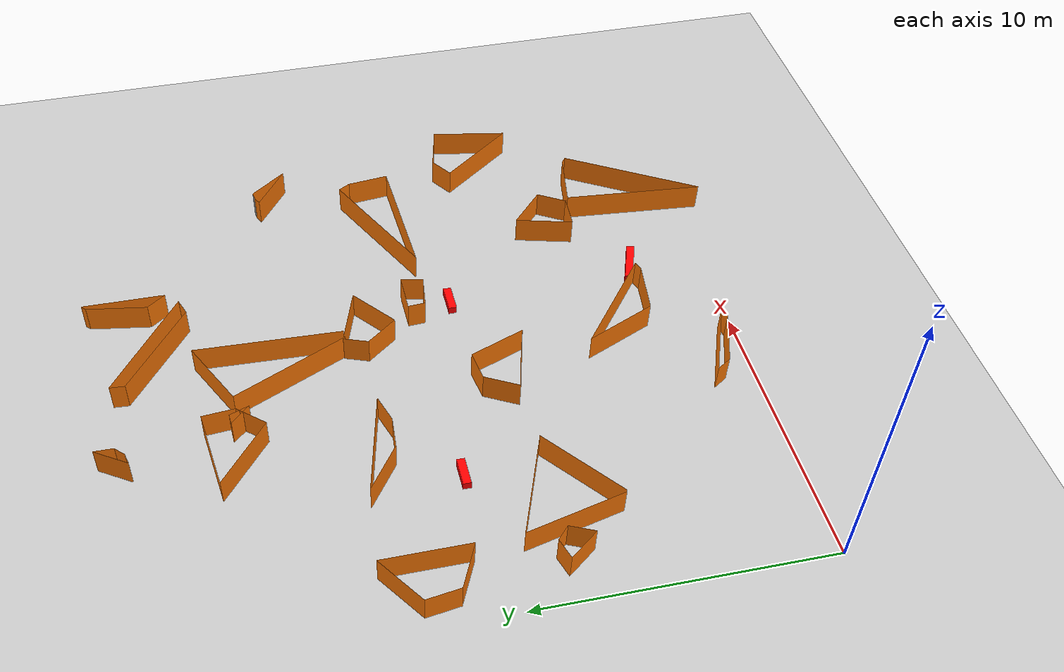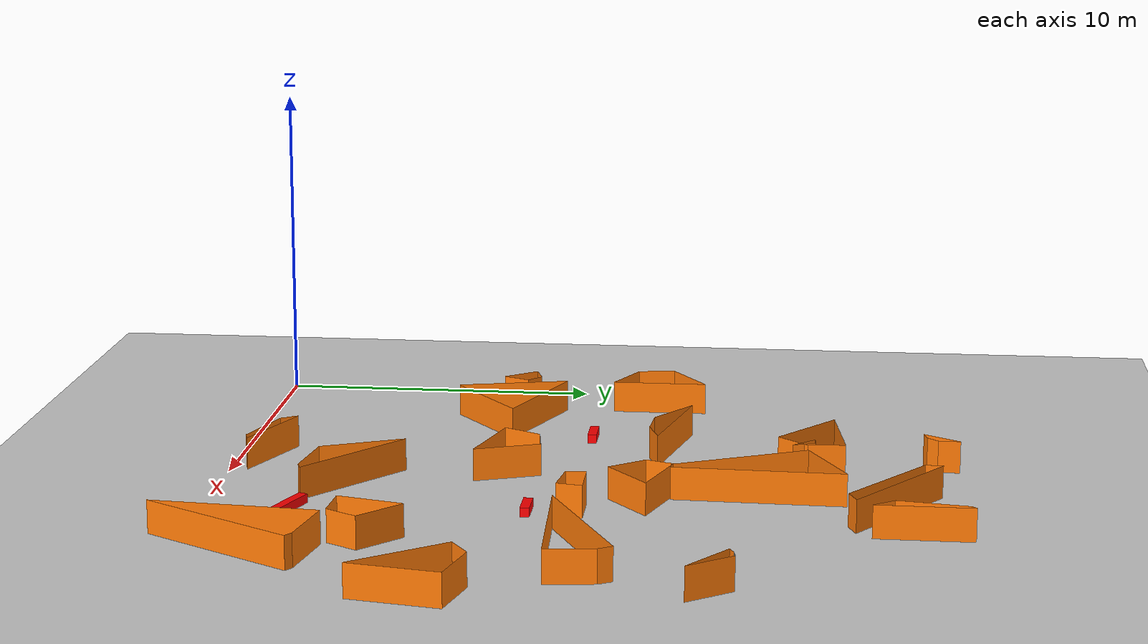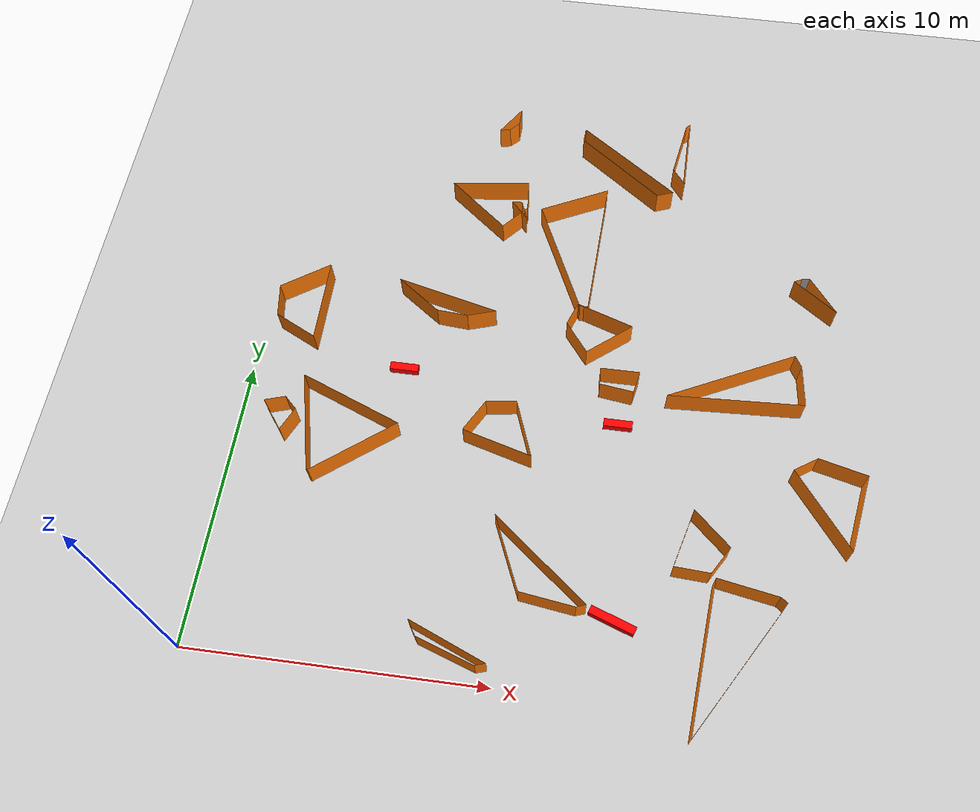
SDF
<sdf version="1.7">
 <world name="default">
  <light name="sun" type="directional">
   <pose>0 0 10 0 -0 0</pose>
   <diffuse>0.8 0.8 0.8 1</diffuse>
   <specular>0.2 0.2 0.2 1</specular>
   <attenuation>
    <range>1000</range>
    <constant>0.9</constant>
    <linear>0.01</linear>
    <quadratic>0.001</quadratic>
   </attenuation>
   <direction>-0.5 0.1 -0.9</direction>
   <spot><inner_angle>0</inner_angle><outer_angle>0</outer_angle><falloff>0</falloff></spot>
  </light>
  <model name="ground_plane">
   <static>1</static>
   <link name="link">
    <collision name="collision">
     <geometry><plane><normal>0 0 1</normal><size>100 100</size></plane></geometry>
     <surface>
      <contact><collide_bitmask>65535</collide_bitmask></contact>
      <friction><ode><mu>100</mu><mu2>50</mu2></ode></friction>
     </surface>
    </collision>
    <visual name="visual">
     <cast_shadows>0</cast_shadows>
     <geometry><plane><normal>0 0 1</normal><size>100 100</size></plane></geometry>
     <material>
      <script><uri>file://media/materials/scripts/gazebo.material</uri><name>Gazebo/Grey</name></script>
     </material>
    </visual>
   </link>
  </model>
  <gravity>0 0 -9.8</gravity>
  <magnetic_field>6e-06 2.3e-05 -4.2e-05</magnetic_field>
  <atmosphere type="adiabatic"/>
  <physics type="ode">
   <max_step_size>0.001</max_step_size>
   <real_time_factor>1</real_time_factor>
   <real_time_update_rate>1000</real_time_update_rate>
  </physics>
  <scene><ambient>0.4 0.4 0.4 1</ambient><background>0.7 0.7 0.7 1</background><shadows>1</shadows></scene>
  <spherical_coordinates>
   <surface_model>EARTH_WGS84</surface_model>
   <latitude_deg>0</latitude_deg>
   <longitude_deg>0</longitude_deg>
   <elevation>0</elevation>
   <heading_deg>0</heading_deg>
  </spherical_coordinates>
  <model name="ecmr1">
   <pose>10.688 10.727 0 0 -0 0</pose>
   <link name="Wall_0">
    <collision name="Wall_0_Collision">
     <geometry><box><size>2.74956 0 1</size></box></geometry>
     <pose>0 0 0.5 0 -0 0</pose>
    </collision>
    <visual name="Wall_0_Visual">
     <pose>0 0 0.5 0 -0 0</pose>
     <geometry><box><size>2.74956 0 1</size></box></geometry>
     <material>
      <script><uri>file://media/materials/scripts/gazebo.material</uri><name>Gazebo/Grey</name></script>
      <ambient>0.996078 0.47451 0.0196078 1</ambient>
     </material>
     <meta><layer>0</layer></meta>
    </visual>
    <pose>10.4415 -3.7665 0 0 -0 1.39052</pose>
   </link>
   <link name="Wall_1">
    <collision name="Wall_1_Collision">
     <geometry><box><size>1.72759 0 1</size></box></geometry>
     <pose>0 0 0.5 0 -0 0</pose>
    </collision>
    <visual name="Wall_1_Visual">
     <pose>0 0 0.5 0 -0 0</pose>
     <geometry><box><size>1.72759 0 1</size></box></geometry>
     <material>
      <script><uri>file://media/materials/scripts/gazebo.material</uri><name>Gazebo/Grey</name></script>
      <ambient>0.996078 0.47451 0.0196078 1</ambient>
     </material>
     <meta><layer>0</layer></meta>
    </visual>
    <pose>9.8495 -2.2065 0 0 -0 2.899</pose>
   </link>
   <link name="Wall_10">
    <collision name="Wall_10_Collision">
     <geometry><box><size>0.275536 0 1</size></box></geometry>
     <pose>0 0 0.5 0 -0 0</pose>
    </collision>
    <visual name="Wall_10_Visual">
     <pose>0 0 0.5 0 -0 0</pose>
     <geometry><box><size>0.275536 0 1</size></box></geometry>
     <material>
      <script><uri>file://media/materials/scripts/gazebo.material</uri><name>Gazebo/Grey</name></script>
      <ambient>1 1 1 1</ambient>
     </material>
     <meta><layer>0</layer></meta>
    </visual>
    <pose>8.439 5.044 0 0 -0 -2.98122</pose>
   </link>
   <link name="Wall_11">
    <collision name="Wall_11_Collision">
     <geometry><box><size>0.304113 0 1</size></box></geometry>
     <pose>0 0 0.5 0 -0 0</pose>
    </collision>
    <visual name="Wall_11_Visual">
     <pose>0 0 0.5 0 -0 0</pose>
     <geometry><box><size>0.304113 0 1</size></box></geometry>
     <material>
      <script><uri>file://media/materials/scripts/gazebo.material</uri><name>Gazebo/Grey</name></script>
      <ambient>0.996078 0.47451 0.0196078 1</ambient>
     </material>
     <meta><layer>0</layer></meta>
    </visual>
    <pose>8.1665 4.955 0 0 -0 -2.6853</pose>
   </link>
   <link name="Wall_12">
    <collision name="Wall_12_Collision">
     <geometry><box><size>1.87399 0 1</size></box></geometry>
     <pose>0 0 0.5 0 -0 0</pose>
    </collision>
    <visual name="Wall_12_Visual">
     <pose>0 0 0.5 0 -0 0</pose>
     <geometry><box><size>1.87399 0 1</size></box></geometry>
     <material>
      <script><uri>file://media/materials/scripts/gazebo.material</uri><name>Gazebo/Grey</name></script>
      <ambient>0.996078 0.47451 0.0196078 1</ambient>
     </material>
     <meta><layer>0</layer></meta>
    </visual>
    <pose>8.7875 4.3365 0 0 -0 -0.629306</pose>
   </link>
   <link name="Wall_13">
    <collision name="Wall_13_Collision">
     <geometry><box><size>1.60682 0 1</size></box></geometry>
     <pose>0 0 0.5 0 -0 0</pose>
    </collision>
    <visual name="Wall_13_Visual">
     <pose>0 0 0.5 0 -0 0</pose>
     <geometry><box><size>1.60682 0 1</size></box></geometry>
     <material>
      <script><uri>file://media/materials/scripts/gazebo.material</uri><name>Gazebo/Grey</name></script>
      <ambient>0.996078 0.47451 0.0196078 1</ambient>
     </material>
     <meta><layer>0</layer></meta>
    </visual>
    <pose>9.06 4.4255 0 0 -0 2.2189</pose>
   </link>
   <link name="Wall_15">
    <collision name="Wall_15_Collision">
     <geometry><box><size>1.18554 0 1</size></box></geometry>
     <pose>0 0 0.5 0 -0 0</pose>
    </collision>
    <visual name="Wall_15_Visual">
     <pose>0 0 0.5 0 -0 0</pose>
     <geometry><box><size>1.18554 0 1</size></box></geometry>
     <material>
      <script><uri>file://media/materials/scripts/gazebo.material</uri><name>Gazebo/Grey</name></script>
      <ambient>0.996078 0.47451 0.0196078 1</ambient>
     </material>
     <meta><layer>0</layer></meta>
    </visual>
    <pose>-10.175 1.6885 0 0 -0 -1.4252</pose>
   </link>
   <link name="Wall_16">
    <collision name="Wall_16_Collision">
     <geometry><box><size>1.6239 0 1</size></box></geometry>
     <pose>0 0 0.5 0 -0 0</pose>
    </collision>
    <visual name="Wall_16_Visual">
     <pose>0 0 0.5 0 -0 0</pose>
     <geometry><box><size>1.6239 0 1</size></box></geometry>
     <material>
      <script><uri>file://media/materials/scripts/gazebo.material</uri><name>Gazebo/Grey</name></script>
      <ambient>0.996078 0.47451 0.0196078 1</ambient>
     </material>
     <meta><layer>0</layer></meta>
    </visual>
    <pose>-9.3595 0.7455 0 0 -0 -0.454559</pose>
   </link>
   <link name="Wall_17">
    <collision name="Wall_17_Collision">
     <geometry><box><size>3.00202 0 1</size></box></geometry>
     <pose>0 0 0.5 0 -0 0</pose>
    </collision>
    <visual name="Wall_17_Visual">
     <pose>0 0 0.5 0 -0 0</pose>
     <geometry><box><size>3.00202 0 1</size></box></geometry>
     <material>
      <script><uri>file://media/materials/scripts/gazebo.material</uri><name>Gazebo/Grey</name></script>
      <ambient>0.996078 0.47451 0.0196078 1</ambient>
     </material>
     <meta><layer>0</layer></meta>
    </visual>
    <pose>-8.635 1.89 0 0 -0 1.57413</pose>
   </link>
   <link name="Wall_18">
    <collision name="Wall_18_Collision">
     <geometry><box><size>1.96802 0 1</size></box></geometry>
     <pose>0 0 0.5 0 -0 0</pose>
    </collision>
    <visual name="Wall_18_Visual">
     <pose>0 0 0.5 0 -0 0</pose>
     <geometry><box><size>1.96802 0 1</size></box></geometry>
     <material>
      <script><uri>file://media/materials/scripts/gazebo.material</uri><name>Gazebo/Grey</name></script>
      <ambient>0.996078 0.47451 0.0196078 1</ambient>
     </material>
     <meta><layer>0</layer></meta>
    </visual>
    <pose>-9.4505 2.833 0 0 -0 -2.53865</pose>
   </link>
   <link name="Wall_2">
    <collision name="Wall_2_Collision">
     <geometry><box><size>0.938836 0 1</size></box></geometry>
     <pose>0 0 0.5 0 -0 0</pose>
    </collision>
    <visual name="Wall_2_Visual">
     <pose>0 0 0.5 0 -0 0</pose>
     <geometry><box><size>0.938836 0 1</size></box></geometry>
     <material>
      <script><uri>file://media/materials/scripts/gazebo.material</uri><name>Gazebo/Grey</name></script>
      <ambient>0.996078 0.47451 0.0196078 1</ambient>
     </material>
     <meta><layer>0</layer></meta>
    </visual>
    <pose>8.6195 -2.258 0 0 -0 -2.55714</pose>
   </link>
   <link name="Wall_20">
    <collision name="Wall_20_Collision">
     <geometry><box><size>1.36502 0 1</size></box></geometry>
     <pose>0 0 0.5 0 -0 0</pose>
    </collision>
    <visual name="Wall_20_Visual">
     <pose>0 0 0.5 0 -0 0</pose>
     <geometry><box><size>1.36502 0 1</size></box></geometry>
     <material>
      <script><uri>file://media/materials/scripts/gazebo.material</uri><name>Gazebo/Grey</name></script>
      <ambient>0.996078 0.47451 0.0196078 1</ambient>
     </material>
     <meta><layer>0</layer></meta>
    </visual>
    <pose>2.1705 0.451001 0 0 -0 -3.13573</pose>
   </link>
   <link name="Wall_21">
    <collision name="Wall_21_Collision">
     <geometry><box><size>0.620291 0 1</size></box></geometry>
     <pose>0 0 0.5 0 -0 0</pose>
    </collision>
    <visual name="Wall_21_Visual">
     <pose>0 0 0.5 0 -0 0</pose>
     <geometry><box><size>0.620291 0 1</size></box></geometry>
     <material>
      <script><uri>file://media/materials/scripts/gazebo.material</uri><name>Gazebo/Grey</name></script>
      <ambient>0.996078 0.47451 0.0196078 1</ambient>
     </material>
     <meta><layer>0</layer></meta>
    </visual>
    <pose>1.508 0.137501 0 0 -0 -1.50627</pose>
   </link>
   <link name="Wall_22">
    <collision name="Wall_22_Collision">
     <geometry><box><size>1.18432 0 1</size></box></geometry>
     <pose>0 0 0.5 0 -0 0</pose>
    </collision>
    <visual name="Wall_22_Visual">
     <pose>0 0 0.5 0 -0 0</pose>
     <geometry><box><size>1.18432 0 1</size></box></geometry>
     <material>
      <script><uri>file://media/materials/scripts/gazebo.material</uri><name>Gazebo/Grey</name></script>
      <ambient>0.996078 0.47451 0.0196078 1</ambient>
     </material>
     <meta><layer>0</layer></meta>
    </visual>
    <pose>2.115 -0.249999 0 0 -0 -0.132105</pose>
   </link>
   <link name="Wall_23">
    <collision name="Wall_23_Collision">
     <geometry><box><size>0.797427 0 1</size></box></geometry>
     <pose>0 0 0.5 0 -0 0</pose>
    </collision>
    <visual name="Wall_23_Visual">
     <pose>0 0 0.5 0 -0 0</pose>
     <geometry><box><size>0.797427 0 1</size></box></geometry>
     <material>
      <script><uri>file://media/materials/scripts/gazebo.material</uri><name>Gazebo/Grey</name></script>
      <ambient>0.996078 0.47451 0.0196078 1</ambient>
     </material>
     <meta><layer>0</layer></meta>
    </visual>
    <pose>2.7775 0.0635 0 0 -0 1.38029</pose>
   </link>
   <link name="Wall_25">
    <collision name="Wall_25_Collision">
     <geometry><box><size>1.05769 0 1</size></box></geometry>
     <pose>0 0 0.5 0 -0 0</pose>
    </collision>
    <visual name="Wall_25_Visual">
     <pose>0 0 0.5 0 -0 0</pose>
     <geometry><box><size>1.05769 0 1</size></box></geometry>
     <material>
      <script><uri>file://media/materials/scripts/gazebo.material</uri><name>Gazebo/Grey</name></script>
      <ambient>0.996078 0.47451 0.0196078 1</ambient>
     </material>
     <meta><layer>0</layer></meta>
    </visual>
    <pose>-1.7265 -1.28 0 0 -0 -2.99929</pose>
   </link>
   <link name="Wall_26">
    <collision name="Wall_26_Collision">
     <geometry><box><size>1.29809 0 1</size></box></geometry>
     <pose>0 0 0.5 0 -0 0</pose>
    </collision>
    <visual name="Wall_26_Visual">
     <pose>0 0 0.5 0 -0 0</pose>
     <geometry><box><size>1.29809 0 1</size></box></geometry>
     <material>
      <script><uri>file://media/materials/scripts/gazebo.material</uri><name>Gazebo/Grey</name></script>
      <ambient>0.996078 0.47451 0.0196078 1</ambient>
     </material>
     <meta><layer>0</layer></meta>
    </visual>
    <pose>-2.5595 -1.9255 0 0 -0 -2.06787</pose>
   </link>
   <link name="Wall_27">
    <collision name="Wall_27_Collision">
     <geometry><box><size>2.51253 0 1</size></box></geometry>
     <pose>0 0 0.5 0 -0 0</pose>
    </collision>
    <visual name="Wall_27_Visual">
     <pose>0 0 0.5 0 -0 0</pose>
     <geometry><box><size>2.51253 0 1</size></box></geometry>
     <material>
      <script><uri>file://media/materials/scripts/gazebo.material</uri><name>Gazebo/Grey</name></script>
      <ambient>0.996078 0.47451 0.0196078 1</ambient>
     </material>
     <meta><layer>0</layer></meta>
    </visual>
    <pose>-1.6585 -2.832 0 0 -0 -0.270755</pose>
   </link>
   <link name="Wall_28">
    <collision name="Wall_28_Collision">
     <geometry><box><size>2.10319 0 1</size></box></geometry>
     <pose>0 0 0.5 0 -0 0</pose>
    </collision>
    <visual name="Wall_28_Visual">
     <pose>0 0 0.5 0 -0 0</pose>
     <geometry><box><size>2.10319 0 1</size></box></geometry>
     <material>
      <script><uri>file://media/materials/scripts/gazebo.material</uri><name>Gazebo/Grey</name></script>
      <ambient>0.996078 0.47451 0.0196078 1</ambient>
     </material>
     <meta><layer>0</layer></meta>
    </visual>
    <pose>-0.8255 -2.1865 0 0 -0 1.93797</pose>
   </link>
   <link name="Wall_3">
    <collision name="Wall_3_Collision">
     <geometry><box><size>3.26182 0 1</size></box></geometry>
     <pose>0 0 0.5 0 -0 0</pose>
    </collision>
    <visual name="Wall_3_Visual">
     <pose>0 0 0.5 0 -0 0</pose>
     <geometry><box><size>3.26182 0 1</size></box></geometry>
     <material>
      <script><uri>file://media/materials/scripts/gazebo.material</uri><name>Gazebo/Grey</name></script>
      <ambient>0.996078 0.47451 0.0196078 1</ambient>
     </material>
     <meta><layer>0</layer></meta>
    </visual>
    <pose>9.2115 -3.818 0 0 -0 -0.923494</pose>
   </link>
   <link name="Wall_30">
    <collision name="Wall_30_Collision">
     <geometry><box><size>0.212869 0 1</size></box></geometry>
     <pose>0 0 0.5 0 -0 0</pose>
    </collision>
    <visual name="Wall_30_Visual">
     <pose>0 0 0.5 0 -0 0</pose>
     <geometry><box><size>0.212869 0 1</size></box></geometry>
     <material>
      <script><uri>file://media/materials/scripts/gazebo.material</uri><name>Gazebo/Grey</name></script>
      <ambient>0.996078 0.47451 0.0196078 1</ambient>
     </material>
     <meta><layer>0</layer></meta>
    </visual>
    <pose>3.7465 11.541 0 0 -0 -2.3728</pose>
   </link>
   <link name="Wall_31">
    <collision name="Wall_31_Collision">
     <geometry><box><size>2.13919 0 1</size></box></geometry>
     <pose>0 0 0.5 0 -0 0</pose>
    </collision>
    <visual name="Wall_31_Visual">
     <pose>0 0 0.5 0 -0 0</pose>
     <geometry><box><size>2.13919 0 1</size></box></geometry>
     <material>
      <script><uri>file://media/materials/scripts/gazebo.material</uri><name>Gazebo/Grey</name></script>
      <ambient>0.996078 0.47451 0.0196078 1</ambient>
     </material>
     <meta><layer>0</layer></meta>
    </visual>
    <pose>3.5 10.411 0 0 -0 -1.73041</pose>
   </link>
   <link name="Wall_32">
    <collision name="Wall_32_Collision">
     <geometry><box><size>0.795016 0 1</size></box></geometry>
     <pose>0 0 0.5 0 -0 0</pose>
    </collision>
    <visual name="Wall_32_Visual">
     <pose>0 0 0.5 0 -0 0</pose>
     <geometry><box><size>0.795016 0 1</size></box></geometry>
     <material>
      <script><uri>file://media/materials/scripts/gazebo.material</uri><name>Gazebo/Grey</name></script>
      <ambient>0.996078 0.47451 0.0196078 1</ambient>
     </material>
     <meta><layer>0</layer></meta>
    </visual>
    <pose>3.5665 9.0355 0 0 -0 -0.933584</pose>
   </link>
   <link name="Wall_33">
    <collision name="Wall_33_Collision">
     <geometry><box><size>2.89907 0 1</size></box></geometry>
     <pose>0 0 0.5 0 -0 0</pose>
    </collision>
    <visual name="Wall_33_Visual">
     <pose>0 0 0.5 0 -0 0</pose>
     <geometry><box><size>2.89907 0 1</size></box></geometry>
     <material>
      <script><uri>file://media/materials/scripts/gazebo.material</uri><name>Gazebo/Grey</name></script>
      <ambient>0.996078 0.47451 0.0196078 1</ambient>
     </material>
     <meta><layer>0</layer></meta>
    </visual>
    <pose>3.813 10.1655 0 0 -0 1.5639</pose>
   </link>
   <link name="Wall_35">
    <collision name="Wall_35_Collision">
     <geometry><box><size>1.09313 0 1</size></box></geometry>
     <pose>0 0 0.5 0 -0 0</pose>
    </collision>
    <visual name="Wall_35_Visual">
     <pose>0 0 0.5 0 -0 0</pose>
     <geometry><box><size>1.09313 0 1</size></box></geometry>
     <material>
      <script><uri>file://media/materials/scripts/gazebo.material</uri><name>Gazebo/Grey</name></script>
      <ambient>0.996078 0.47451 0.0196078 1</ambient>
     </material>
     <meta><layer>0</layer></meta>
    </visual>
    <pose>6.0215 -5.9665 0 0 -0 1.02975</pose>
   </link>
   <link name="Wall_36">
    <collision name="Wall_36_Collision">
     <geometry><box><size>1.68937 0 1</size></box></geometry>
     <pose>0 0 0.5 0 -0 0</pose>
    </collision>
    <visual name="Wall_36_Visual">
     <pose>0 0 0.5 0 -0 0</pose>
     <geometry><box><size>1.68937 0 1</size></box></geometry>
     <material>
      <script><uri>file://media/materials/scripts/gazebo.material</uri><name>Gazebo/Grey</name></script>
      <ambient>0.996078 0.47451 0.0196078 1</ambient>
     </material>
     <meta><layer>0</layer></meta>
    </visual>
    <pose>5.681 -4.9265 0 0 -0 2.39848</pose>
   </link>
   <link name="Wall_37">
    <collision name="Wall_37_Collision">
     <geometry><box><size>2.08186 0 1</size></box></geometry>
     <pose>0 0 0.5 0 -0 0</pose>
    </collision>
    <visual name="Wall_37_Visual">
     <pose>0 0 0.5 0 -0 0</pose>
     <geometry><box><size>2.08186 0 1</size></box></geometry>
     <material>
      <script><uri>file://media/materials/scripts/gazebo.material</uri><name>Gazebo/Grey</name></script>
      <ambient>0.996078 0.47451 0.0196078 1</ambient>
     </material>
     <meta><layer>0</layer></meta>
    </visual>
    <pose>4.7935 -5.3615 0 0 -0 -1.82871</pose>
   </link>
   <link name="Wall_38">
    <collision name="Wall_38_Collision">
     <geometry><box><size>1.21385 0 1</size></box></geometry>
     <pose>0 0 0.5 0 -0 0</pose>
    </collision>
    <visual name="Wall_38_Visual">
     <pose>0 0 0.5 0 -0 0</pose>
     <geometry><box><size>1.21385 0 1</size></box></geometry>
     <material>
      <script><uri>file://media/materials/scripts/gazebo.material</uri><name>Gazebo/Grey</name></script>
      <ambient>0.996078 0.47451 0.0196078 1</ambient>
     </material>
     <meta><layer>0</layer></meta>
    </visual>
    <pose>5.134 -6.4015 0 0 -0 -0.055224</pose>
   </link>
   <link name="Wall_40">
    <collision name="Wall_40_Collision">
     <geometry><box><size>1.14745 0 1</size></box></geometry>
     <pose>0 0 0.5 0 -0 0</pose>
    </collision>
    <visual name="Wall_40_Visual">
     <pose>0 0 0.5 0 -0 0</pose>
     <geometry><box><size>1.14745 0 1</size></box></geometry>
     <material>
      <script><uri>file://media/materials/scripts/gazebo.material</uri><name>Gazebo/Grey</name></script>
      <ambient>0.996078 0.47451 0.0196078 1</ambient>
     </material>
     <meta><layer>0</layer></meta>
    </visual>
    <pose>-1.9745 7.4075 0 0 -0 1.65893</pose>
   </link>
   <link name="Wall_41">
    <collision name="Wall_41_Collision">
     <geometry><box><size>2.82675 0 1</size></box></geometry>
     <pose>0 0 0.5 0 -0 0</pose>
    </collision>
    <visual name="Wall_41_Visual">
     <pose>0 0 0.5 0 -0 0</pose>
     <geometry><box><size>2.82675 0 1</size></box></geometry>
     <material>
      <script><uri>file://media/materials/scripts/gazebo.material</uri><name>Gazebo/Grey</name></script>
      <ambient>0.996078 0.47451 0.0196078 1</ambient>
     </material>
     <meta><layer>0</layer></meta>
    </visual>
    <pose>-3.4275 7.804 0 0 -0 -3.01746</pose>
   </link>
   <link name="Wall_42">
    <collision name="Wall_42_Collision">
     <geometry><box><size>2.71744 0 1</size></box></geometry>
     <pose>0 0 0.5 0 -0 0</pose>
    </collision>
    <visual name="Wall_42_Visual">
     <pose>0 0 0.5 0 -0 0</pose>
     <geometry><box><size>2.71744 0 1</size></box></geometry>
     <material>
      <script><uri>file://media/materials/scripts/gazebo.material</uri><name>Gazebo/Grey</name></script>
      <ambient>0.996078 0.47451 0.0196078 1</ambient>
     </material>
     <meta><layer>0</layer></meta>
    </visual>
    <pose>-3.772 6.7765 0 0 -0 -0.678247</pose>
   </link>
   <link name="Wall_43">
    <collision name="Wall_43_Collision">
     <geometry><box><size>1.20658 0 1</size></box></geometry>
     <pose>0 0 0.5 0 -0 0</pose>
    </collision>
    <visual name="Wall_43_Visual">
     <pose>0 0 0.5 0 -0 0</pose>
     <geometry><box><size>1.20658 0 1</size></box></geometry>
     <material>
      <script><uri>file://media/materials/scripts/gazebo.material</uri><name>Gazebo/Grey</name></script>
      <ambient>0.996078 0.47451 0.0196078 1</ambient>
     </material>
     <meta><layer>0</layer></meta>
    </visual>
    <pose>-2.319 6.38 0 0 -0 0.856956</pose>
   </link>
   <link name="Wall_45">
    <collision name="Wall_45_Collision">
     <geometry><box><size>0.440555 0 1</size></box></geometry>
     <pose>0 0 0.5 0 -0 0</pose>
    </collision>
    <visual name="Wall_45_Visual">
     <pose>0 0 0.5 0 -0 0</pose>
     <geometry><box><size>0.440555 0 1</size></box></geometry>
     <material>
      <script><uri>file://media/materials/scripts/gazebo.material</uri><name>Gazebo/Grey</name></script>
      <ambient>0.996078 0.47451 0.0196078 1</ambient>
     </material>
     <meta><layer>0</layer></meta>
    </visual>
    <pose>-2.93 10.6165 0 0 -0 0.796634</pose>
   </link>
   <link name="Wall_46">
    <collision name="Wall_46_Collision">
     <geometry><box><size>0.678483 0 1</size></box></geometry>
     <pose>0 0 0.5 0 -0 0</pose>
    </collision>
    <visual name="Wall_46_Visual">
     <pose>0 0 0.5 0 -0 0</pose>
     <geometry><box><size>0.678483 0 1</size></box></geometry>
     <material>
      <script><uri>file://media/materials/scripts/gazebo.material</uri><name>Gazebo/Grey</name></script>
      <ambient>0.996078 0.47451 0.0196078 1</ambient>
     </material>
     <meta><layer>0</layer></meta>
    </visual>
    <pose>-2.771 11.113 0 0 -0 1.55605</pose>
   </link>
   <link name="Wall_47">
    <collision name="Wall_47_Collision">
     <geometry><box><size>1.29333 0 1</size></box></geometry>
     <pose>0 0 0.5 0 -0 0</pose>
    </collision>
    <visual name="Wall_47_Visual">
     <pose>0 0 0.5 0 -0 0</pose>
     <geometry><box><size>1.29333 0 1</size></box></geometry>
     <material>
      <script><uri>file://media/materials/scripts/gazebo.material</uri><name>Gazebo/Grey</name></script>
      <ambient>0.996078 0.47451 0.0196078 1</ambient>
     </material>
     <meta><layer>0</layer></meta>
    </visual>
    <pose>-3.1125 10.906 0 0 -0 -2.13628</pose>
   </link>
   <link name="Wall_48">
    <collision name="Wall_48_Collision">
     <geometry><box><size>0.387848 0 1</size></box></geometry>
     <pose>0 0 0.5 0 -0 0</pose>
    </collision>
    <visual name="Wall_48_Visual">
     <pose>0 0 0.5 0 -0 0</pose>
     <geometry><box><size>0.387848 0 1</size></box></geometry>
     <material>
      <script><uri>file://media/materials/scripts/gazebo.material</uri><name>Gazebo/Grey</name></script>
      <ambient>0.996078 0.47451 0.0196078 1</ambient>
     </material>
     <meta><layer>0</layer></meta>
    </visual>
    <pose>-3.2715 10.4095 0 0 -0 0.258111</pose>
   </link>
   <link name="Wall_5">
    <collision name="Wall_5_Collision">
     <geometry><box><size>3.55085 0 1</size></box></geometry>
     <pose>0 0 0.5 0 -0 0</pose>
    </collision>
    <visual name="Wall_5_Visual">
     <pose>0 0 0.5 0 -0 0</pose>
     <geometry><box><size>3.55085 0 1</size></box></geometry>
     <material>
      <script><uri>file://media/materials/scripts/gazebo.material</uri><name>Gazebo/Grey</name></script>
      <ambient>0.996078 0.47451 0.0196078 1</ambient>
     </material>
     <meta><layer>0</layer></meta>
    </visual>
    <pose>-8.186 -2.886 0 0 -0 -1.33429</pose>
   </link>
   <link name="Wall_50">
    <collision name="Wall_50_Collision">
     <geometry><box><size>4.38755 0 1</size></box></geometry>
     <pose>0 0 0.5 0 -0 0</pose>
    </collision>
    <visual name="Wall_50_Visual">
     <pose>0 0 0.5 0 -0 0</pose>
     <geometry><box><size>4.38755 0 1</size></box></geometry>
     <material>
      <script><uri>file://media/materials/scripts/gazebo.material</uri><name>Gazebo/Grey</name></script>
      <ambient>0.996078 0.47451 0.0196078 1</ambient>
     </material>
     <meta><layer>0</layer></meta>
    </visual>
    <pose>1.609 9.5515 0 0 -0 2.51888</pose>
   </link>
   <link name="Wall_51">
    <collision name="Wall_51_Collision">
     <geometry><box><size>0.529967 0 1</size></box></geometry>
     <pose>0 0 0.5 0 -0 0</pose>
    </collision>
    <visual name="Wall_51_Visual">
     <pose>0 0 0.5 0 -0 0</pose>
     <geometry><box><size>0.529967 0 1</size></box></geometry>
     <material>
      <script><uri>file://media/materials/scripts/gazebo.material</uri><name>Gazebo/Grey</name></script>
      <ambient>0.996078 0.47451 0.0196078 1</ambient>
     </material>
     <meta><layer>0</layer></meta>
    </visual>
    <pose>-0.189 10.5665 0 0 -0 -1.63121</pose>
   </link>
   <link name="Wall_52">
    <collision name="Wall_52_Collision">
     <geometry><box><size>3.77143 0 1</size></box></geometry>
     <pose>0 0 0.5 0 -0 0</pose>
    </collision>
    <visual name="Wall_52_Visual">
     <pose>0 0 0.5 0 -0 0</pose>
     <geometry><box><size>3.77143 0 1</size></box></geometry>
     <material>
      <script><uri>file://media/materials/scripts/gazebo.material</uri><name>Gazebo/Grey</name></script>
      <ambient>0.996078 0.47451 0.0196078 1</ambient>
     </material>
     <meta><layer>0</layer></meta>
    </visual>
    <pose>1.308 9.1765 0 0 -0 -0.639577</pose>
   </link>
   <link name="Wall_53">
    <collision name="Wall_53_Collision">
     <geometry><box><size>0.611344 0 1</size></box></geometry>
     <pose>0 0 0.5 0 -0 0</pose>
    </collision>
    <visual name="Wall_53_Visual">
     <pose>0 0 0.5 0 -0 0</pose>
     <geometry><box><size>0.611344 0 1</size></box></geometry>
     <material>
      <script><uri>file://media/materials/scripts/gazebo.material</uri><name>Gazebo/Grey</name></script>
      <ambient>0.996078 0.47451 0.0196078 1</ambient>
     </material>
     <meta><layer>0</layer></meta>
    </visual>
    <pose>3.106 8.1615 0 0 -0 0.369875</pose>
   </link>
   <link name="Wall_55">
    <collision name="Wall_55_Collision">
     <geometry><box><size>2.81942 0 1</size></box></geometry>
     <pose>0 0 0.5 0 -0 0</pose>
    </collision>
    <visual name="Wall_55_Visual">
     <pose>0 0 0.5 0 -0 0</pose>
     <geometry><box><size>2.81942 0 1</size></box></geometry>
     <material>
      <script><uri>file://media/materials/scripts/gazebo.material</uri><name>Gazebo/Grey</name></script>
      <ambient>0.996078 0.47451 0.0196078 1</ambient>
     </material>
     <meta><layer>0</layer></meta>
    </visual>
    <pose>-2.2065 -9.681 0 0 -0 2.75845</pose>
   </link>
   <link name="Wall_56">
    <collision name="Wall_56_Collision">
     <geometry><box><size>0.597542 0 1</size></box></geometry>
     <pose>0 0 0.5 0 -0 0</pose>
    </collision>
    <visual name="Wall_56_Visual">
     <pose>0 0 0.5 0 -0 0</pose>
     <geometry><box><size>0.597542 0 1</size></box></geometry>
     <material>
      <script><uri>file://media/materials/scripts/gazebo.material</uri><name>Gazebo/Grey</name></script>
      <ambient>0.996078 0.47451 0.0196078 1</ambient>
     </material>
     <meta><layer>0</layer></meta>
    </visual>
    <pose>-3.3535 -9.406 0 0 -0 -1.00368</pose>
   </link>
   <link name="Wall_57">
    <collision name="Wall_57_Collision">
     <geometry><box><size>2.05549 0 1</size></box></geometry>
     <pose>0 0 0.5 0 -0 0</pose>
    </collision>
    <visual name="Wall_57_Visual">
     <pose>0 0 0.5 0 -0 0</pose>
     <geometry><box><size>2.05549 0 1</size></box></geometry>
     <material>
      <script><uri>file://media/materials/scripts/gazebo.material</uri><name>Gazebo/Grey</name></script>
      <ambient>0.996078 0.47451 0.0196078 1</ambient>
     </material>
     <meta><layer>0</layer></meta>
    </visual>
    <pose>-2.219 -9.986 0 0 -0 -0.324827</pose>
   </link>
   <link name="Wall_58">
    <collision name="Wall_58_Collision">
     <geometry><box><size>0.361873 0 1</size></box></geometry>
     <pose>0 0 0.5 0 -0 0</pose>
    </collision>
    <visual name="Wall_58_Visual">
     <pose>0 0 0.5 0 -0 0</pose>
     <geometry><box><size>0.361873 0 1</size></box></geometry>
     <material>
      <script><uri>file://media/materials/scripts/gazebo.material</uri><name>Gazebo/Grey</name></script>
      <ambient>0.996078 0.47451 0.0196078 1</ambient>
     </material>
     <meta><layer>0</layer></meta>
    </visual>
    <pose>-1.072 -10.261 0 0 -0 0.29728</pose>
   </link>
   <link name="Wall_6">
    <collision name="Wall_6_Collision">
     <geometry><box><size>0.064846 0 1</size></box></geometry>
     <pose>0 0 0.5 0 -0 0</pose>
    </collision>
    <visual name="Wall_6_Visual">
     <pose>0 0 0.5 0 -0 0</pose>
     <geometry><box><size>0.064846 0 1</size></box></geometry>
     <material>
      <script><uri>file://media/materials/scripts/gazebo.material</uri><name>Gazebo/Grey</name></script>
      <ambient>0.996078 0.47451 0.0196078 1</ambient>
     </material>
     <meta><layer>0</layer></meta>
    </visual>
    <pose>-7.739 -4.6215 0 0 -0 -0.297365</pose>
   </link>
   <link name="Wall_60">
    <collision name="Wall_60_Collision">
     <geometry><box><size>4.69759 0 1</size></box></geometry>
     <pose>0 0 0.5 0 -0 0</pose>
    </collision>
    <visual name="Wall_60_Visual">
     <pose>0 0 0.5 0 -0 0</pose>
     <geometry><box><size>4.69759 0 1</size></box></geometry>
     <material>
      <script><uri>file://media/materials/scripts/gazebo.material</uri><name>Gazebo/Grey</name></script>
      <ambient>0.996078 0.47451 0.0196078 1</ambient>
     </material>
     <meta><layer>0</layer></meta>
    </visual>
    <pose>6.205 -0.1905 0 0 -0 0.048768</pose>
   </link>
   <link name="Wall_61">
    <collision name="Wall_61_Collision">
     <geometry><box><size>1.48973 0 1</size></box></geometry>
     <pose>0 0 0.5 0 -0 0</pose>
    </collision>
    <visual name="Wall_61_Visual">
     <pose>0 0 0.5 0 -0 0</pose>
     <geometry><box><size>1.48973 0 1</size></box></geometry>
     <material>
      <script><uri>file://media/materials/scripts/gazebo.material</uri><name>Gazebo/Grey</name></script>
      <ambient>0.996078 0.47451 0.0196078 1</ambient>
     </material>
     <meta><layer>0</layer></meta>
    </visual>
    <pose>8.466 0.664 0 0 -0 1.68516</pose>
   </link>
   <link name="Wall_62">
    <collision name="Wall_62_Collision">
     <geometry><box><size>0.466875 0 1</size></box></geometry>
     <pose>0 0 0.5 0 -0 0</pose>
    </collision>
    <visual name="Wall_62_Visual">
     <pose>0 0 0.5 0 -0 0</pose>
     <geometry><box><size>0.466875 0 1</size></box></geometry>
     <material>
      <script><uri>file://media/materials/scripts/gazebo.material</uri><name>Gazebo/Grey</name></script>
      <ambient>0.996078 0.47451 0.0196078 1</ambient>
     </material>
     <meta><layer>0</layer></meta>
    </visual>
    <pose>8.264 1.606 0 0 -0 2.09579</pose>
   </link>
   <link name="Wall_63">
    <collision name="Wall_63_Collision">
     <geometry><box><size>4.78035 0 1</size></box></geometry>
     <pose>0 0 0.5 0 -0 0</pose>
    </collision>
    <visual name="Wall_63_Visual">
     <pose>0 0 0.5 0 -0 0</pose>
     <geometry><box><size>4.78035 0 1</size></box></geometry>
     <material>
      <script><uri>file://media/materials/scripts/gazebo.material</uri><name>Gazebo/Grey</name></script>
      <ambient>0.996078 0.47451 0.0196078 1</ambient>
     </material>
     <meta><layer>0</layer></meta>
    </visual>
    <pose>6.003 0.751501 0 0 -0 -2.68375</pose>
   </link>
   <link name="Wall_65">
    <collision name="Wall_65_Collision">
     <geometry><box><size>1.88497 0 1</size></box></geometry>
     <pose>0 0 0.5 0 -0 0</pose>
    </collision>
    <visual name="Wall_65_Visual">
     <pose>0 0 0.5 0 -0 0</pose>
     <geometry><box><size>1.88497 0 1</size></box></geometry>
     <material>
      <script><uri>file://media/materials/scripts/gazebo.material</uri><name>Gazebo/Grey</name></script>
      <ambient>0.996078 0.47451 0.0196078 1</ambient>
     </material>
     <meta><layer>0</layer></meta>
    </visual>
    <pose>-5.272 2.5665 0 0 -0 -0.623765</pose>
   </link>
   <link name="Wall_66">
    <collision name="Wall_66_Collision">
     <geometry><box><size>1.10113 0 1</size></box></geometry>
     <pose>0 0 0.5 0 -0 0</pose>
    </collision>
    <visual name="Wall_66_Visual">
     <pose>0 0 0.5 0 -0 0</pose>
     <geometry><box><size>1.10113 0 1</size></box></geometry>
     <material>
      <script><uri>file://media/materials/scripts/gazebo.material</uri><name>Gazebo/Grey</name></script>
      <ambient>0.996078 0.47451 0.0196078 1</ambient>
     </material>
     <meta><layer>0</layer></meta>
    </visual>
    <pose>-3.958 1.9745 0 0 -0 -0.075448</pose>
   </link>
   <link name="Wall_67">
    <collision name="Wall_67_Collision">
     <geometry><box><size>1.02904 0 1</size></box></geometry>
     <pose>0 0 0.5 0 -0 0</pose>
    </collision>
    <visual name="Wall_67_Visual">
     <pose>0 0 0.5 0 -0 0</pose>
     <geometry><box><size>1.02904 0 1</size></box></geometry>
     <material>
      <script><uri>file://media/materials/scripts/gazebo.material</uri><name>Gazebo/Grey</name></script>
      <ambient>0.996078 0.47451 0.0196078 1</ambient>
     </material>
     <meta><layer>0</layer></meta>
    </visual>
    <pose>-2.9195 2.0915 0 0 -0 0.313146</pose>
   </link>
   <link name="Wall_68">
    <collision name="Wall_68_Collision">
     <geometry><box><size>3.70974 0 1</size></box></geometry>
     <pose>0 0 0.5 0 -0 0</pose>
    </collision>
    <visual name="Wall_68_Visual">
     <pose>0 0 0.5 0 -0 0</pose>
     <geometry><box><size>3.70974 0 1</size></box></geometry>
     <material>
      <script><uri>file://media/materials/scripts/gazebo.material</uri><name>Gazebo/Grey</name></script>
      <ambient>0.996078 0.47451 0.0196078 1</ambient>
     </material>
     <meta><layer>0</layer></meta>
    </visual>
    <pose>-4.2335 2.6835 0 0 -0 2.9057</pose>
   </link>
   <link name="Wall_7">
    <collision name="Wall_7_Collision">
     <geometry><box><size>3.36207 0 1</size></box></geometry>
     <pose>0 0 0.5 0 -0 0</pose>
    </collision>
    <visual name="Wall_7_Visual">
     <pose>0 0 0.5 0 -0 0</pose>
     <geometry><box><size>3.36207 0 1</size></box></geometry>
     <material>
      <script><uri>file://media/materials/scripts/gazebo.material</uri><name>Gazebo/Grey</name></script>
      <ambient>0.996078 0.47451 0.0196078 1</ambient>
     </material>
     <meta><layer>0</layer></meta>
    </visual>
    <pose>-6.3865 -3.592 0 0 -0 0.666287</pose>
   </link>
   <link name="Wall_70">
    <collision name="Wall_70_Collision">
     <geometry><box><size>2.69769 0 1</size></box></geometry>
     <pose>0 0 0.5 0 -0 0</pose>
    </collision>
    <visual name="Wall_70_Visual">
     <pose>0 0 0.5 0 -0 0</pose>
     <geometry><box><size>2.69769 0 1</size></box></geometry>
     <material>
      <script><uri>file://media/materials/scripts/gazebo.material</uri><name>Gazebo/Grey</name></script>
      <ambient>0.996078 0.47451 0.0196078 1</ambient>
     </material>
     <meta><layer>0</layer></meta>
    </visual>
    <pose>-0.7915 -6.5995 0 0 -0 -1.15607</pose>
   </link>
   <link name="Wall_71">
    <collision name="Wall_71_Collision">
     <geometry><box><size>1.88631 0 1</size></box></geometry>
     <pose>0 0 0.5 0 -0 0</pose>
    </collision>
    <visual name="Wall_71_Visual">
     <pose>0 0 0.5 0 -0 0</pose>
     <geometry><box><size>1.88631 0 1</size></box></geometry>
     <material>
      <script><uri>file://media/materials/scripts/gazebo.material</uri><name>Gazebo/Grey</name></script>
      <ambient>0.996078 0.47451 0.0196078 1</ambient>
     </material>
     <meta><layer>0</layer></meta>
    </visual>
    <pose>0.686501 -7.9615 0 0 -0 -0.135599</pose>
   </link>
   <link name="Wall_72">
    <collision name="Wall_72_Collision">
     <geometry><box><size>0.331494 0 1</size></box></geometry>
     <pose>0 0 0.5 0 -0 0</pose>
    </collision>
    <visual name="Wall_72_Visual">
     <pose>0 0 0.5 0 -0 0</pose>
     <geometry><box><size>0.331494 0 1</size></box></geometry>
     <material>
      <script><uri>file://media/materials/scripts/gazebo.material</uri><name>Gazebo/Grey</name></script>
      <ambient>0.996078 0.47451 0.0196078 1</ambient>
     </material>
     <meta><layer>0</layer></meta>
    </visual>
    <pose>1.777 -8.033 0 0 -0 0.344647</pose>
   </link>
   <link name="Wall_73">
    <collision name="Wall_73_Collision">
     <geometry><box><size>4.18358 0 1</size></box></geometry>
     <pose>0 0 0.5 0 -0 0</pose>
    </collision>
    <visual name="Wall_73_Visual">
     <pose>0 0 0.5 0 -0 0</pose>
     <geometry><box><size>4.18358 0 1</size></box></geometry>
     <material>
      <script><uri>file://media/materials/scripts/gazebo.material</uri><name>Gazebo/Grey</name></script>
      <ambient>0.996078 0.47451 0.0196078 1</ambient>
     </material>
     <meta><layer>0</layer></meta>
    </visual>
    <pose>0.299001 -6.671 0 0 -0 2.4673</pose>
   </link>
   <link name="Wall_75">
    <collision name="Wall_75_Collision">
     <geometry><box><size>2.61755 0 1</size></box></geometry>
     <pose>0 0 0.5 0 -0 0</pose>
    </collision>
    <visual name="Wall_75_Visual">
     <pose>0 0 0.5 0 -0 0</pose>
     <geometry><box><size>2.61755 0 1</size></box></geometry>
     <material>
      <script><uri>file://media/materials/scripts/gazebo.material</uri><name>Gazebo/Grey</name></script>
      <ambient>0.996078 0.47451 0.0196078 1</ambient>
     </material>
     <meta><layer>0</layer></meta>
    </visual>
    <pose>-0.217999 7.4435 0 0 -0 -2.68034</pose>
   </link>
   <link name="Wall_76">
    <collision name="Wall_76_Collision">
     <geometry><box><size>4.43378 0 1</size></box></geometry>
     <pose>0 0 0.5 0 -0 0</pose>
    </collision>
    <visual name="Wall_76_Visual">
     <pose>0 0 0.5 0 -0 0</pose>
     <geometry><box><size>4.43378 0 1</size></box></geometry>
     <material>
      <script><uri>file://media/materials/scripts/gazebo.material</uri><name>Gazebo/Grey</name></script>
      <ambient>0.996078 0.47451 0.0196078 1</ambient>
     </material>
     <meta><layer>0</layer></meta>
    </visual>
    <pose>-0.4495 4.8535 0 0 -0 -1.13267</pose>
   </link>
   <link name="Wall_77">
    <collision name="Wall_77_Collision">
     <geometry><box><size>0.289085 0 1</size></box></geometry>
     <pose>0 0 0.5 0 -0 0</pose>
    </collision>
    <visual name="Wall_77_Visual">
     <pose>0 0 0.5 0 -0 0</pose>
     <geometry><box><size>0.289085 0 1</size></box></geometry>
     <material>
      <script><uri>file://media/materials/scripts/gazebo.material</uri><name>Gazebo/Grey</name></script>
      <ambient>0.996078 0.47451 0.0196078 1</ambient>
     </material>
     <meta><layer>0</layer></meta>
    </visual>
    <pose>0.6355 2.8495 0 0 -0 0.024217</pose>
   </link>
   <link name="Wall_78">
    <collision name="Wall_78_Collision">
     <geometry><box><size>5.17593 0 1</size></box></geometry>
     <pose>0 0 0.5 0 -0 0</pose>
    </collision>
    <visual name="Wall_78_Visual">
     <pose>0 0 0.5 0 -0 0</pose>
     <geometry><box><size>5.17593 0 1</size></box></geometry>
     <material>
      <script><uri>file://media/materials/scripts/gazebo.material</uri><name>Gazebo/Grey</name></script>
      <ambient>0.996078 0.47451 0.0196078 1</ambient>
     </material>
     <meta><layer>0</layer></meta>
    </visual>
    <pose>0.867001 5.4395 0 0 -0 1.53717</pose>
   </link>
   <link name="Wall_8">
    <collision name="Wall_8_Collision">
     <geometry><box><size>3.80142 0 1</size></box></geometry>
     <pose>0 0 0.5 0 -0 0</pose>
    </collision>
    <visual name="Wall_8_Visual">
     <pose>0 0 0.5 0 -0 0</pose>
     <geometry><box><size>3.80142 0 1</size></box></geometry>
     <material>
      <script><uri>file://media/materials/scripts/gazebo.material</uri><name>Gazebo/Grey</name></script>
      <ambient>0.996078 0.47451 0.0196078 1</ambient>
     </material>
     <meta><layer>0</layer></meta>
    </visual>
    <pose>-6.8335 -1.8565 0 0 -0 2.76641</pose>
   </link>
   <link name="Wall_80">
    <collision name="Wall_80_Collision">
     <geometry><box><size>2.08548 0 1</size></box></geometry>
     <pose>0 0 0.5 0 -0 0</pose>
    </collision>
    <visual name="Wall_80_Visual">
     <pose>0 0 0.5 0 -0 0</pose>
     <geometry><box><size>2.08548 0 1</size></box></geometry>
     <material>
      <script><uri>file://media/materials/scripts/gazebo.material</uri><name>Gazebo/Grey</name></script>
      <ambient>0.996078 0.47451 0.0196078 1</ambient>
     </material>
     <meta><layer>0</layer></meta>
    </visual>
    <pose>6.921 -6.7495 0 0 -0 2.96761</pose>
   </link>
   <link name="Wall_81">
    <collision name="Wall_81_Collision">
     <geometry><box><size>5.06345 0 1</size></box></geometry>
     <pose>0 0 0.5 0 -0 0</pose>
    </collision>
    <visual name="Wall_81_Visual">
     <pose>0 0 0.5 0 -0 0</pose>
     <geometry><box><size>5.06345 0 1</size></box></geometry>
     <material>
      <script><uri>file://media/materials/scripts/gazebo.material</uri><name>Gazebo/Grey</name></script>
      <ambient>0.996078 0.47451 0.0196078 1</ambient>
     </material>
     <meta><layer>0</layer></meta>
    </visual>
    <pose>5.684 -9.092 0 0 -0 -1.65384</pose>
   </link>
   <link name="Wall_82">
    <collision name="Wall_82_Collision">
     <geometry><box><size>5.2645 0 1</size></box></geometry>
     <pose>0 0 0.5 0 -0 0</pose>
    </collision>
    <visual name="Wall_82_Visual">
     <pose>0 0 0.5 0 -0 0</pose>
     <geometry><box><size>5.2645 0 1</size></box></geometry>
     <material>
      <script><uri>file://media/materials/scripts/gazebo.material</uri><name>Gazebo/Grey</name></script>
      <ambient>0.996078 0.47451 0.0196078 1</ambient>
     </material>
     <meta><layer>0</layer></meta>
    </visual>
    <pose>6.826 -9.3565 0 0 -0 1.03139</pose>
   </link>
   <link name="Wall_83">
    <collision name="Wall_83_Collision">
     <geometry><box><size>0.284823 0 1</size></box></geometry>
     <pose>0 0 0.5 0 -0 0</pose>
    </collision>
    <visual name="Wall_83_Visual">
     <pose>0 0 0.5 0 -0 0</pose>
     <geometry><box><size>0.284823 0 1</size></box></geometry>
     <material>
      <script><uri>file://media/materials/scripts/gazebo.material</uri><name>Gazebo/Grey</name></script>
      <ambient>0.996078 0.47451 0.0196078 1</ambient>
     </material>
     <meta><layer>0</layer></meta>
    </visual>
    <pose>8.063 -7.014 0 0 -0 2.51073</pose>
   </link>
   <link name="Wall_85">
    <collision name="Wall_85_Collision">
     <geometry><box><size>2.1118 0 1</size></box></geometry>
     <pose>0 0 0.5 0 -0 0</pose>
    </collision>
    <visual name="Wall_85_Visual">
     <pose>0 0 0.5 0 -0 0</pose>
     <geometry><box><size>2.1118 0 1</size></box></geometry>
     <material>
      <script><uri>file://media/materials/scripts/gazebo.material</uri><name>Gazebo/Grey</name></script>
      <ambient>0.996078 0.47451 0.0196078 1</ambient>
     </material>
     <meta><layer>0</layer></meta>
    </visual>
    <pose>1.424 2.582 0 0 -0 2.81475</pose>
   </link>
   <link name="Wall_86">
    <collision name="Wall_86_Collision">
     <geometry><box><size>0.888365 0 1</size></box></geometry>
     <pose>0 0 0.5 0 -0 0</pose>
    </collision>
    <visual name="Wall_86_Visual">
     <pose>0 0 0.5 0 -0 0</pose>
     <geometry><box><size>0.888365 0 1</size></box></geometry>
     <material>
      <script><uri>file://media/materials/scripts/gazebo.material</uri><name>Gazebo/Grey</name></script>
      <ambient>0.996078 0.47451 0.0196078 1</ambient>
     </material>
     <meta><layer>0</layer></meta>
    </visual>
    <pose>0.271 2.504 0 0 -0 -1.92245</pose>
   </link>
   <link name="Wall_87">
    <collision name="Wall_87_Collision">
     <geometry><box><size>1.33515 0 1</size></box></geometry>
     <pose>0 0 0.5 0 -0 0</pose>
    </collision>
    <visual name="Wall_87_Visual">
     <pose>0 0 0.5 0 -0 0</pose>
     <geometry><box><size>1.33515 0 1</size></box></geometry>
     <material>
      <script><uri>file://media/materials/scripts/gazebo.material</uri><name>Gazebo/Grey</name></script>
      <ambient>0.996078 0.47451 0.0196078 1</ambient>
     </material>
     <meta><layer>0</layer></meta>
    </visual>
    <pose>0.526501 1.559 0 0 -0 -0.912315</pose>
   </link>
   <link name="Wall_88">
    <collision name="Wall_88_Collision">
     <geometry><box><size>1.91991 0 1</size></box></geometry>
     <pose>0 0 0.5 0 -0 0</pose>
    </collision>
    <visual name="Wall_88_Visual">
     <pose>0 0 0.5 0 -0 0</pose>
     <geometry><box><size>1.91991 0 1</size></box></geometry>
     <material>
      <script><uri>file://media/materials/scripts/gazebo.material</uri><name>Gazebo/Grey</name></script>
      <ambient>0.996078 0.47451 0.0196078 1</ambient>
     </material>
     <meta><layer>0</layer></meta>
    </visual>
    <pose>1.6795 1.637 0 0 -0 0.683201</pose>
   </link>
   <link name="Wall_90">
    <collision name="Wall_90_Collision">
     <geometry><box><size>0.736919 0 1</size></box></geometry>
     <pose>0 0 0.5 0 -0 0</pose>
    </collision>
    <visual name="Wall_90_Visual">
     <pose>0 0 0.5 0 -0 0</pose>
     <geometry><box><size>0.736919 0 1</size></box></geometry>
     <material>
      <script><uri>file://media/materials/scripts/gazebo.material</uri><name>Gazebo/Grey</name></script>
      <ambient>0.996078 0.47451 0.0196078 1</ambient>
     </material>
     <meta><layer>0</layer></meta>
    </visual>
    <pose>-9.3965 -2.1775 0 0 -0 -2.83701</pose>
   </link>
   <link name="Wall_91">
    <collision name="Wall_91_Collision">
     <geometry><box><size>1.27083 0 1</size></box></geometry>
     <pose>0 0 0.5 0 -0 0</pose>
    </collision>
    <visual name="Wall_91_Visual">
     <pose>0 0 0.5 0 -0 0</pose>
     <geometry><box><size>1.27083 0 1</size></box></geometry>
     <material>
      <script><uri>file://media/materials/scripts/gazebo.material</uri><name>Gazebo/Grey</name></script>
      <ambient>0.996078 0.47451 0.0196078 1</ambient>
     </material>
     <meta><layer>0</layer></meta>
    </visual>
    <pose>-9.363 -2.7935 0 0 -0 -0.919898</pose>
   </link>
   <link name="Wall_92">
    <collision name="Wall_92_Collision">
     <geometry><box><size>0.898074 0 1</size></box></geometry>
     <pose>0 0 0.5 0 -0 0</pose>
    </collision>
    <visual name="Wall_92_Visual">
     <pose>0 0 0.5 0 -0 0</pose>
     <geometry><box><size>0.898074 0 1</size></box></geometry>
     <material>
      <script><uri>file://media/materials/scripts/gazebo.material</uri><name>Gazebo/Grey</name></script>
      <ambient>0.996078 0.47451 0.0196078 1</ambient>
     </material>
     <meta><layer>0</layer></meta>
    </visual>
    <pose>-8.796 -2.8885 0 0 -0 1.15348</pose>
   </link>
   <link name="Wall_93">
    <collision name="Wall_93_Collision">
     <geometry><box><size>0.595552 0 1</size></box></geometry>
     <pose>0 0 0.5 0 -0 0</pose>
    </collision>
    <visual name="Wall_93_Visual">
     <pose>0 0 0.5 0 -0 0</pose>
     <geometry><box><size>0.595552 0 1</size></box></geometry>
     <material>
      <script><uri>file://media/materials/scripts/gazebo.material</uri><name>Gazebo/Grey</name></script>
      <ambient>0.996078 0.47451 0.0196078 1</ambient>
     </material>
     <meta><layer>0</layer></meta>
    </visual>
    <pose>-8.8295 -2.2725 0 0 -0 2.37994</pose>
   </link>
   <link name="Wall_95">
    <collision name="Wall_95_Collision">
     <geometry><box><size>0.029967 0 1</size></box></geometry>
     <pose>0 0 0.5 0 -0 0</pose>
    </collision>
    <visual name="Wall_95_Visual">
     <pose>0 0 0.5 0 -0 0</pose>
     <geometry><box><size>0.029967 0 1</size></box></geometry>
     <material>
      <script><uri>file://media/materials/scripts/gazebo.material</uri><name>Gazebo/Grey</name></script>
      <ambient>0.996078 0.47451 0.0196078 1</ambient>
     </material>
     <meta><layer>0</layer></meta>
    </visual>
    <pose>-2.4955 7.0455 0 0 -0 -2.69287</pose>
   </link>
   <link name="Wall_96">
    <collision name="Wall_96_Collision">
     <geometry><box><size>0.894794 0 1</size></box></geometry>
     <pose>0 0 0.5 0 -0 0</pose>
    </collision>
    <visual name="Wall_96_Visual">
     <pose>0 0 0.5 0 -0 0</pose>
     <geometry><box><size>0.894794 0 1</size></box></geometry>
     <material>
      <script><uri>file://media/materials/scripts/gazebo.material</uri><name>Gazebo/Grey</name></script>
      <ambient>0.996078 0.47451 0.0196078 1</ambient>
     </material>
     <meta><layer>0</layer></meta>
    </visual>
    <pose>-2.201 6.7145 0 0 -0 -0.811479</pose>
   </link>
   <link name="Wall_97">
    <collision name="Wall_97_Collision">
     <geometry><box><size>0.735621 0 1</size></box></geometry>
     <pose>0 0 0.5 0 -0 0</pose>
    </collision>
    <visual name="Wall_97_Visual">
     <pose>0 0 0.5 0 -0 0</pose>
     <geometry><box><size>0.735621 0 1</size></box></geometry>
     <material>
      <script><uri>file://media/materials/scripts/gazebo.material</uri><name>Gazebo/Grey</name></script>
      <ambient>0.996078 0.47451 0.0196078 1</ambient>
     </material>
     <meta><layer>0</layer></meta>
    </visual>
    <pose>-2.0245 6.7335 0 0 -0 1.93641</pose>
   </link>
   <link name="Wall_98">
    <collision name="Wall_98_Collision">
     <geometry><box><size>0.326957 0 1</size></box></geometry>
     <pose>0 0 0.5 0 -0 0</pose>
    </collision>
    <visual name="Wall_98_Visual">
     <pose>0 0 0.5 0 -0 0</pose>
     <geometry><box><size>0.326957 0 1</size></box></geometry>
     <material>
      <script><uri>file://media/materials/scripts/gazebo.material</uri><name>Gazebo/Grey</name></script>
      <ambient>0.996078 0.47451 0.0196078 1</ambient>
     </material>
     <meta><layer>0</layer></meta>
    </visual>
    <pose>-2.319 7.0645 0 0 -0 -3.06506</pose>
   </link>
   <static>1</static>
  </model>
  <model name="obstacle">
   <link name="link_0">
    <inertial>
     <mass>10</mass>
     <inertia><ixx>1.66667</ixx><ixy>0</ixy><ixz>0</ixz><iyy>1.66667</iyy><iyz>0</iyz><izz>1.66667</izz></inertia>
    </inertial>
    <visual name="visual">
     <geometry><box><size>1 0.28 0.5</size></box></geometry>
     <material>
      <lighting>1</lighting>
      <script><uri>file://media/materials/scripts/gazebo.material</uri><name>Gazebo/Grey</name></script>
      <shader type="pixel"><normal_map>__default__</normal_map></shader>
      <ambient>1 0 0 1</ambient>
      <diffuse>0.7 0.7 0.7 1</diffuse>
      <specular>0.01 0.01 0.01 1</specular>
      <emissive>0 0 0 1</emissive>
     </material>
    </visual>
    <collision name="collision">
     <geometry><box><size>1 1 1</size></box></geometry>
     <surface>
      <friction>
       <ode><mu>1</mu><mu2>1</mu2><fdir1>0 0 0</fdir1><slip1>0</slip1><slip2>0</slip2></ode>
       <torsional>
        <coefficient>1</coefficient>
        <patch_radius>0</patch_radius>
        <surface_radius>0</surface_radius>
        <use_patch_radius>1</use_patch_radius>
        <ode><slip>0</slip></ode>
       </torsional>
      </friction>
      <bounce><restitution_coefficient>0</restitution_coefficient><threshold>1e+06</threshold></bounce>
      <contact>
       <collide_without_contact>0</collide_without_contact>
       <collide_without_contact_bitmask>1</collide_without_contact_bitmask>
       <collide_bitmask>1</collide_bitmask>
       <ode>
        <soft_cfm>0</soft_cfm>
        <soft_erp>0.2</soft_erp>
        <kp>1e+13</kp>
        <kd>1</kd>
        <max_vel>0.01</max_vel>
        <min_depth>0</min_depth>
       </ode>
       <bullet>
        <split_impulse>1</split_impulse>
        <split_impulse_penetration_threshold>-0.01</split_impulse_penetration_threshold>
        <soft_cfm>0</soft_cfm>
        <soft_erp>0.2</soft_erp>
        <kp>1e+13</kp>
        <kd>1</kd>
       </bullet>
      </contact>
     </surface>
    </collision>
   </link>
   <static>0</static>
   <pose>13 9.5 0 0 -0 0</pose>
  </model>
  <model name="obstacle_0">
   <link name="link_0">
    <inertial>
     <mass>10</mass>
     <inertia><ixx>1.66667</ixx><ixy>0</ixy><ixz>0</ixz><iyy>1.66667</iyy><iyz>0</iyz><izz>1.66667</izz></inertia>
    </inertial>
    <visual name="visual">
     <geometry><box><size>1 0.28 0.5</size></box></geometry>
     <material>
      <lighting>1</lighting>
      <script><uri>file://media/materials/scripts/gazebo.material</uri><name>Gazebo/Grey</name></script>
      <shader type="pixel"><normal_map>__default__</normal_map></shader>
      <ambient>1 0 0 1</ambient>
      <diffuse>0.7 0.7 0.7 1</diffuse>
      <specular>0.01 0.01 0.01 1</specular>
      <emissive>0 0 0 1</emissive>
     </material>
    </visual>
    <collision name="collision">
     <geometry><box><size>1 1 1</size></box></geometry>
     <surface>
      <friction>
       <ode><mu>1</mu><mu2>1</mu2><fdir1>0 0 0</fdir1><slip1>0</slip1><slip2>0</slip2></ode>
       <torsional>
        <coefficient>1</coefficient>
        <patch_radius>0</patch_radius>
        <surface_radius>0</surface_radius>
        <use_patch_radius>1</use_patch_radius>
        <ode><slip>0</slip></ode>
       </torsional>
      </friction>
      <bounce><restitution_coefficient>0</restitution_coefficient><threshold>1e+06</threshold></bounce>
      <contact>
       <collide_without_contact>0</collide_without_contact>
       <collide_without_contact_bitmask>1</collide_without_contact_bitmask>
       <collide_bitmask>1</collide_bitmask>
       <ode>
        <soft_cfm>0</soft_cfm>
        <soft_erp>0.2</soft_erp>
        <kp>1e+13</kp>
        <kd>1</kd>
        <max_vel>0.01</max_vel>
        <min_depth>0</min_depth>
       </ode>
       <bullet>
        <split_impulse>1</split_impulse>
        <split_impulse_penetration_threshold>-0.01</split_impulse_penetration_threshold>
        <soft_cfm>0</soft_cfm>
        <soft_erp>0.2</soft_erp>
        <kp>1e+13</kp>
        <kd>1</kd>
       </bullet>
      </contact>
     </surface>
    </collision>
   </link>
   <static>0</static>
   <pose>5.3 10.7245 0 0 -0 0</pose>
  </model>
  <model name="qwe">
   <link name="link_1">
    <inertial>
     <mass>1</mass>
     <inertia>
      <ixx>0.166667</ixx>
      <ixy>0</ixy>
      <ixz>0</ixz>
      <iyy>0.166667</iyy>
      <iyz>0</iyz>
      <izz>0.166667</izz>
     </inertia>
    </inertial>
    <visual name="visual">
     <geometry><box><size>1.6 0.28 0.5</size></box></geometry>
     <material>
      <lighting>1</lighting>
      <script><uri>file://media/materials/scripts/gazebo.material</uri><name>Gazebo/Grey</name></script>
      <shader type="pixel"><normal_map>__default__</normal_map></shader>
      <ambient>1 0 0 0</ambient>
      <diffuse>0.7 0.7 0.7 1</diffuse>
      <specular>0.01 0.01 0.01 1</specular>
      <emissive>0 0 0 1</emissive>
     </material>
    </visual>
    <collision name="collision">
     <geometry><box><size>1 1 1</size></box></geometry>
     <surface>
      <friction>
       <ode><mu>1</mu><mu2>1</mu2><fdir1>0 0 0</fdir1><slip1>0</slip1><slip2>0</slip2></ode>
       <torsional>
        <coefficient>1</coefficient>
        <patch_radius>0</patch_radius>
        <surface_radius>0</surface_radius>
        <use_patch_radius>1</use_patch_radius>
        <ode><slip>0</slip></ode>
       </torsional>
      </friction>
      <bounce><restitution_coefficient>0</restitution_coefficient><threshold>1e+06</threshold></bounce>
      <contact>
       <collide_without_contact>0</collide_without_contact>
       <collide_without_contact_bitmask>1</collide_without_contact_bitmask>
       <collide_bitmask>1</collide_bitmask>
       <ode>
        <soft_cfm>0</soft_cfm>
        <soft_erp>0.2</soft_erp>
        <kp>1e+13</kp>
        <kd>1</kd>
        <max_vel>0.01</max_vel>
        <min_depth>0</min_depth>
       </ode>
       <bullet>
        <split_impulse>1</split_impulse>
        <split_impulse_penetration_threshold>-0.01</split_impulse_penetration_threshold>
        <soft_cfm>0</soft_cfm>
        <soft_erp>0.2</soft_erp>
        <kp>1e+13</kp>
        <kd>1</kd>
       </bullet>
      </contact>
     </surface>
    </collision>
   </link>
   <static>0</static>
   <pose>13.5 2.6 0 0 -0 2.8</pose>
  </model>
 </world>
</sdf>
